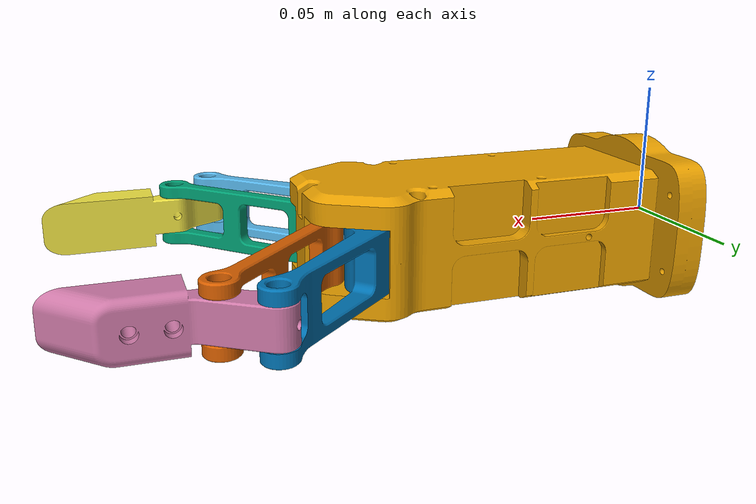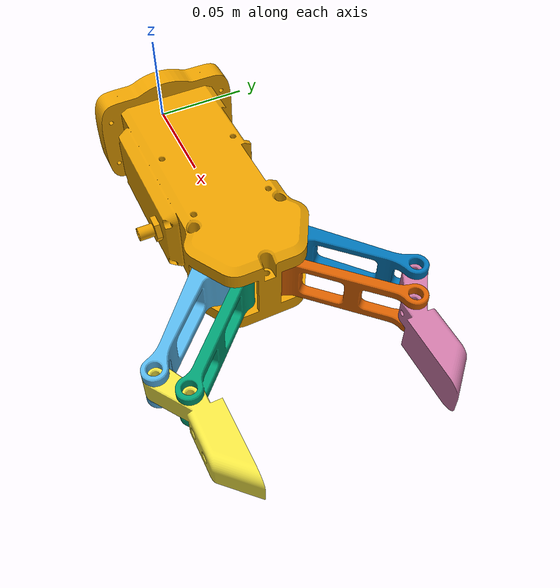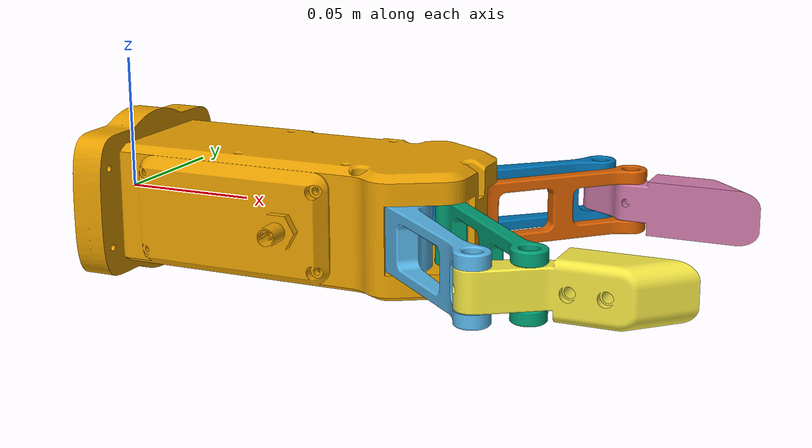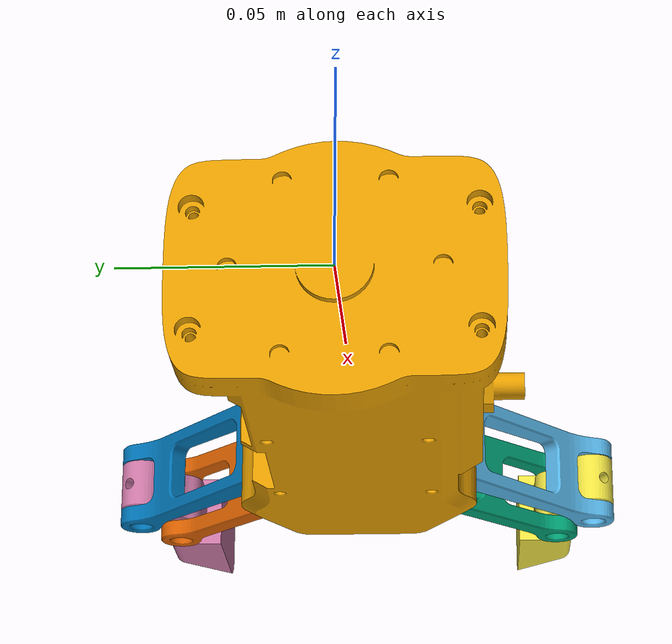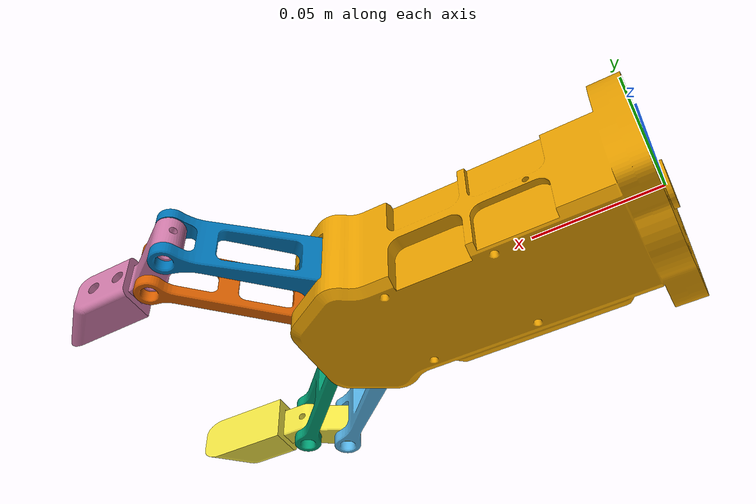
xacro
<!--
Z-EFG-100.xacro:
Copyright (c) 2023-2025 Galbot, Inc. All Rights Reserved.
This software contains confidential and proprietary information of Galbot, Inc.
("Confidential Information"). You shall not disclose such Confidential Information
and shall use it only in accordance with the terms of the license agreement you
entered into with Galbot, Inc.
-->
<?xml version="1.0"?>
<robot name="Hitbot" xmlns:xacro="http://www.ros.org/wiki/xacro">

  <xacro:arg name="type" default="Z-EFG-100"/>
  <xacro:arg name="collider" default="simple"/>

  <xacro:if value="${'$(arg type)' == 'Z-EFG-100'}">
    <xacro:include filename="$(find hitbot_description)/xacro/Z-EFG-100.xacro"/>
    <xacro:Gripper name="" collider_type="$(arg collider)"/>
  </xacro:if>
</robot>

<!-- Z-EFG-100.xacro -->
<robot xmlns:xacro="http://ros.org/wiki/xacro" name="hitbot_gripper">

  <xacro:macro name="Gripper"
    params="name collider_type:=simple">
    <xacro:property name="prefix" value="${name + '_' if name else 'gripper_'}"/>
    <xacro:property name="M_PI" value="3.1415926535897931" />

    <link name="${prefix}base">
      <inertial>
        <origin xyz="0.0828 0.03604 -7.000000000000001e-05" rpy="0 0 0" />
        <mass value="0.878" />
        <inertia ixx="0.0011546199999999999" ixy="0.0026213200000000003"
          ixz="-5.0899999999999995e-06" iyy="0.00603809" iyz="-2.31e-06" izz="0.0071770900000000006" />
      </inertial>
      <visual>
        <geometry>
          <mesh filename="file://$(find hitbot_description)/meshes/Z-EFG-100/visual/base.glb" />
        </geometry>
      </visual>
      <xacro:if value="${collider_type == 'convex_decomposition'}">
        <collision>
          <geometry>
            <mesh filename="file://$(find hitbot_description)/meshes/Z-EFG-100/convex_decomposition/base_link_convex_decomposition.stl" />
          </geometry>
        </collision>
      </xacro:if>
      <xacro:if value="${collider_type == 'simple'}">
        <collision>
          <geometry>
            <mesh filename="file://$(find hitbot_description)/meshes/Z-EFG-100/convex/base_link.stl" />
          </geometry>
        </collision>
      </xacro:if>
    </link>

    <link name="${prefix}link1">
      <inertial>
        <origin xyz="0.01927 -0.00066 -0.00023999999999999998" rpy="0 0 0" />
        <mass value="0.0312" />
        <inertia ixx="2.53e-06" ixy="3.8e-07" ixz="3e-08" iyy="2.928e-05" iyz="6e-08"
          izz="2.795e-05" />
      </inertial>
      <visual>
        <geometry>
          <mesh filename="file://$(find hitbot_description)/meshes/Z-EFG-100/visual/link1.glb" />
        </geometry>
      </visual>
      <xacro:if value="${collider_type == 'convex_decomposition'}">
        <collision>
          <geometry>
            <mesh filename="file://$(find hitbot_description)/meshes/Z-EFG-100/convex_decomposition/gripper_link1_convex_decomposition.stl" />
          </geometry>
        </collision>
      </xacro:if>
      <xacro:if value="${collider_type == 'simple'}">
        <collision>
          <geometry>
            <mesh filename="file://$(find hitbot_description)/meshes/Z-EFG-100/convex/gripper_link1.stl" />
          </geometry>
        </collision>
      </xacro:if>
    </link>

    <joint name="${prefix}joint" type="revolute">
      <origin xyz="0.12183 -0.02 0" rpy="${M_PI} 0 ${-M_PI/4}" />
      <parent link="${prefix}base" />
      <child link="${prefix}link1" />
      <axis xyz="0 0 -1" />
      <limit lower="0" upper="0.75" velocity="3" effort="2" /> <!-- Tuned opening range
      for
      gripper -->
    </joint>

    <link name="${prefix}link2">
      <inertial>
        <origin xyz="0.02767 -0.0 -0.0" rpy="0 0 0" />
        <mass value="0.0168" />
        <inertia ixx="1.25e-06" ixy="0.0" ixz="0.0" iyy="2.284e-05" iyz="0.0" izz="2.175e-05" />
      </inertial>
      <visual>
        <geometry>
          <mesh filename="file://$(find hitbot_description)/meshes/Z-EFG-100/visual/link2.glb" />
        </geometry>
      </visual>
      <xacro:if value="${collider_type == 'convex_decomposition'}">
        <collision>
          <geometry>
            <mesh filename="file://$(find hitbot_description)/meshes/Z-EFG-100/convex_decomposition/gripper_link2_convex_decomposition.stl" />
          </geometry>
        </collision>
      </xacro:if>
      <xacro:if value="${collider_type == 'simple'}">
        <collision>
          <geometry>
            <mesh filename="file://$(find hitbot_description)/meshes/Z-EFG-100/convex/gripper_link2.stl" />
          </geometry>
        </collision>
      </xacro:if>
    </link>

    <joint name="${prefix}joint2" type="revolute">
      <origin xyz="0.1368 -0.01 0" rpy="${M_PI} 0 ${-M_PI/4}" />
      <parent link="${prefix}base" />
      <child link="${prefix}link2" />
      <axis xyz="0 0 -1" />
      <limit lower="0" upper="0.75" velocity="3" effort="2" /> <!-- Tuned opening range
      for
      gripper -->
      <mimic joint="${prefix}joint" multiplier="1.0"/>
    </joint>

    <link name="${prefix}link3">
      <inertial>
        <origin xyz="0.010320000000000001 -0.00034 0.0" rpy="0 0 0" />
        <mass value="0.026000000000000002" />
        <inertia ixx="1.57e-06" ixy="1.92e-06" ixz="0.0" iyy="1.1380000000000001e-05" iyz="0.0"
          izz="1.176e-05" />
      </inertial>
      <visual>
        <geometry>
          <mesh filename="file://$(find hitbot_description)/meshes/Z-EFG-100/visual/link3.glb" />
        </geometry>
      </visual>
      <xacro:if value="${collider_type == 'convex_decomposition'}">
        <collision>
          <geometry>
            <mesh filename="file://$(find hitbot_description)/meshes/Z-EFG-100/convex_decomposition/gripper_link3_convex_decomposition.stl" />
          </geometry>
        </collision>
      </xacro:if>
      <xacro:if value="${collider_type == 'simple'}">
        <collision>
          <geometry>
            <mesh filename="file://$(find hitbot_description)/meshes/Z-EFG-100/convex/gripper_link3.stl" />
          </geometry>
        </collision>
      </xacro:if>
    </link>

    <joint name="${prefix}joint3" type="revolute">
      <origin xyz="0.065 0 0" rpy="0 0 ${-M_PI/4}" />
      <parent link="${prefix}link2" />
      <child link="${prefix}link3" />
      <axis xyz="0 0 -1" />
      <limit lower="0" upper="0.75" velocity="3" effort="2" /> <!-- Tuned opening range
      for
      gripper -->
      <mimic joint="${prefix}joint" multiplier="-1.0"/>
    </joint>

    <link name="${prefix}link4">
      <inertial>
        <origin xyz="0.01927 0.00066 0.00023999999999999998" rpy="0 0 0" />
        <mass value="0.0312" />
        <inertia ixx="2.53e-06" ixy="3.8e-07" ixz="3e-08" iyy="2.928e-05" iyz="6.5e-08"
          izz="2.795e-05" />
      </inertial>
      <visual>
        <geometry>
          <mesh filename="file://$(find hitbot_description)/meshes/Z-EFG-100/visual/link4.glb" />
        </geometry>
      </visual>
      <xacro:if value="${collider_type == 'convex_decomposition'}">
        <collision>
          <geometry>
            <mesh filename="file://$(find hitbot_description)/meshes/Z-EFG-100/convex_decomposition/gripper_link4_convex_decomposition.stl" />
          </geometry>
        </collision>
      </xacro:if>
      <xacro:if value="${collider_type == 'simple'}">
        <collision>
          <geometry>
            <mesh filename="file://$(find hitbot_description)/meshes/Z-EFG-100/convex/gripper_link4.stl" />
          </geometry>
        </collision>
      </xacro:if>
    </link>

    <joint name="${prefix}joint4" type="revolute">
      <origin xyz="0.121833370678203 0.0199999993241963 0" rpy="${M_PI} 0 ${M_PI/4}" />
      <parent link="${prefix}base" />
      <child link="${prefix}link4" />
      <axis xyz="0 0 -1" />
      <limit lower="0" upper="0.75" velocity="3" effort="2" /> <!-- Tuned opening range
      for
      gripper -->
      <mimic joint="${prefix}joint" multiplier="-1.0"/>
    </joint>

    <link name="${prefix}link5">
      <inertial>
        <origin xyz="0.02767 0.0 0.0" rpy="0 0 0" />
        <mass value="0.0168" />
        <inertia ixx="1.25e-06" ixy="0.0" ixz="0.0" iyy="2.284e-05" iyz="0.0" izz="2.175e-05" />
      </inertial>
      <visual>
        <geometry>
          <mesh filename="file://$(find hitbot_description)/meshes/Z-EFG-100/visual/link5.glb" />
        </geometry>
      </visual>
      <xacro:if value="${collider_type == 'convex_decomposition'}">
        <collision>
          <geometry>
            <mesh filename="file://$(find hitbot_description)/meshes/Z-EFG-100/convex_decomposition/gripper_link5_convex_decomposition.stl" />
          </geometry>
        </collision>
      </xacro:if>
      <xacro:if value="${collider_type == 'simple'}">
        <collision>
          <geometry>
            <mesh filename="file://$(find hitbot_description)/meshes/Z-EFG-100/convex/gripper_link5.stl" />
          </geometry>
        </collision>
      </xacro:if>
    </link>

    <joint name="${prefix}joint5" type="revolute">
      <origin xyz="0.1368 0.01 0" rpy="${M_PI} 0 ${M_PI/4}" />
      <parent link="${prefix}base" />
      <child link="${prefix}link5" />
      <axis xyz="0 0 -1" />
      <limit lower="0" upper="0.75" velocity="3" effort="2" /> <!-- Tuned opening range
      for
      gripper -->
      <mimic joint="${prefix}joint" multiplier="-1.0"/>
    </joint>

    <link name="${prefix}link6">
      <inertial>
        <origin xyz="0.010320000000000001 0.00034 -0.0" rpy="0 0 0" />
        <mass value="0.026000000000000002" />
        <inertia ixx="1.57e-06" ixy="-1.92e-06" ixz="0.0" iyy="1.1380000000000001e-05" iyz="0.0"
          izz="1.176e-05" />
      </inertial>
      <visual>
        <geometry>
          <mesh filename="file://$(find hitbot_description)/meshes/Z-EFG-100/visual/link6.glb" />
        </geometry>
      </visual>
      <xacro:if value="${collider_type == 'convex_decomposition'}">
        <collision>
          <geometry>
            <mesh filename="file://$(find hitbot_description)/meshes/Z-EFG-100/convex_decomposition/gripper_link6_convex_decomposition.stl" />
          </geometry>
        </collision>
      </xacro:if>
      <xacro:if value="${collider_type == 'simple'}">
        <collision>
          <geometry>
            <mesh filename="file://$(find hitbot_description)/meshes/Z-EFG-100/convex/gripper_link6.stl" />
          </geometry>
        </collision>
      </xacro:if>
    </link>

    <joint name="${prefix}joint6" type="revolute">
      <origin xyz="0.065 0 0" rpy="0 0 ${M_PI/4}" />
      <parent link="${prefix}link5" />
      <child link="${prefix}link6" />
      <axis xyz="0 0 -1" />
      <limit lower="0" upper="0.75" velocity="3" effort="2" /> <!-- Tuned opening range
      for
      gripper -->
      <mimic joint="${prefix}joint" multiplier="1.0"/>
    </joint>

    <!-- Tool Center Point -->
    <link name="${prefix}tcp_link" />
    <joint name="${prefix}tcp_joint" type="fixed">
      <origin xyz="0.222892 0 0 " rpy="3.14 0 0" />
      <parent link="${prefix}base" />
      <child link="${prefix}tcp_link" />
      <axis xyz="0 0 0" />
    </joint>

  </xacro:macro>
</robot>
